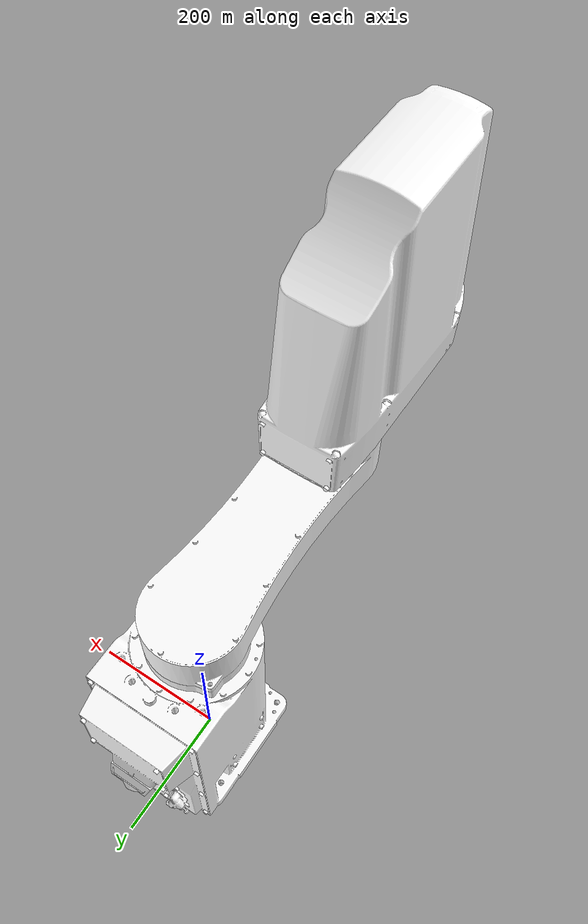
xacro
<?xml version="1.0"?>
<robot xmlns:xacro="http://www.ros.org/wiki/xacro" name="rh6frh">
    <!-- Description This file is a configuration file of a arguments within the RH-6FRH5520 robot driver. -->
    <!-- Here you can set the robot ip and connection port for the real robot -->
    <!-- WARNING!!!! Do not use the driver with any other robot arm. -->
    <!-- Mitsubishi Electric assume any liability if the driver is used with a different robot-->

    <xacro:arg name="is_sim" default="true"/>
    <xacro:arg name="robot_port" default="10000"/>
    <xacro:arg name="robot_ip" default="192.168.91.20"/>

    <xacro:include filename="$(find robot_description)/urdf/scara.urdf.xacro"/>
    <xacro:include filename="$(find robot_description)/urdf/scara_gazebo.xacro"/>
    <xacro:include filename="$(find robot_description)/urdf/scara_ros2_control.xacro"/>

    <!-- Used for fixing robot -->
    <link name="world"/>

    <xacro:rh6frh parent="world">
        <origin xyz="0 0 0" rpy="0 0 0" />
    </xacro:rh6frh>

    <xacro:rh6frh_r2c_hardware is_sim="$(arg is_sim)" robot_ip="$(arg robot_ip)" robot_port="$(arg robot_port)"/>
</robot>

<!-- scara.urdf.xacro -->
<robot xmlns:xacro="http://www.ros.org/wiki/xacro">
    <!-- Description This file is a definition of a model of RH-6FRH5520 robot.-->
    <!-- WARNING!!!! Do not use the driver with any other robot arm. -->
    <!-- Mitsubishi Electric assume any liability if the driver is used with a different robot-->

  <xacro:macro name="rh6frh" params="parent *origin">

    <!-- Robot Colour -->
    <material name="white">
        <color rgba="1 1 1 1.0"/>
    </material>

    <!-- PI Number -->
    <xacro:property name="PI" value="3.14159"/>

    <!-- Max effort for joints -->
    <xacro:property name="effort" value="30.0"/>

    <!-- Max joint 1 velocity [deg/s] -->
    <xacro:property name="velocity_J1" value="400"/>

    <!-- Max joint 2 velocity [deg/s] -->
    <xacro:property name="velocity_J2" value="670"/>

    <!-- Max joint 3 velocity [mm/s] -->
    <xacro:property name="velocity_J3" value="2400"/>

    <!-- Max joint 4 velocity [deg/s] -->
    <xacro:property name="velocity_J4" value="2500"/>

    <!-- Box inertia macro -->
    <xacro:macro name='inertia_box' params='m x y z'>
        <inertial>
            <origin xyz="${x/2} ${y/2} ${z/2}" rpy="0.0 0.0 0.0"/>
            <mass value="${m}"/>
            <inertia ixx="${(1/12)*m*(y*y+z*z)}" ixy="0.0" ixz="0.0" iyy="${(1/12)*m*(x*x+z*z)}" iyz="0.0" izz="${(1/12)*m*(x*x+y*y)}"/>
        </inertial>
    </xacro:macro>

    <!-- Cylinder inertia macro -->
    <xacro:macro name='inertia_cylinder' params='m l r'>
        <inertial>
            <origin xyz="${l/2} 0.0 0.0" rpy="0.0 0.0 0.0"/>
            <mass value="${m}"/>
            <inertia ixx="${(2/5)*m*r*r}" ixy="0.0" ixz="0.0" iyy="${(2/5)*m*r*r}" iyz="0.0" izz="${(2/5)*m*r*r}"/>
        </inertial>
    </xacro:macro>

    <!-- Joint transmission macro-->
    <xacro:macro name="transmission" params="number i">
        <transmission name="J${number}_transmission">
            <plugin>transmission_interface/SimpleTransmission</plugin>
            <actuator name="motor_${number}" role="actuator_1"/>
            <joint name="joint_${number}" role="joint_1"/>
                <mechanical_reduction>${i}</mechanical_reduction>
        </transmission>
    </xacro:macro>

    <!-- Robot model -->

    <!-- First link -->
    <link name="base_link">
        <visual>
            <origin xyz="0.0 0.0 0.0" rpy="${PI/2} 0.0 0.0"/>
            <geometry>
                <mesh filename="package://robot_description/meshes/J1SCARA.stl" scale="1 1 1"/>
            </geometry>
            <material name="white"/>
        </visual>
        <collision>
            <origin xyz="0.0 0.0 0.0" rpy="${PI/2} 0.0 0.0"/>
            <geometry>
                <mesh filename="package://robot_description/meshes/J1SCARA.stl" scale="1 1 1"/>
            </geometry>
        </collision>
        <xacro:inertia_box m="15" x="53.36" y="44.40" z="88.13"></xacro:inertia_box>
    </link>

    <!-- Virtual fixed joint -->
    <joint name="virtual_joint" type="fixed">
        <parent link="${parent}"/>
        <child link="base_link"/>
        <origin xyz="0.0 0.0 0.0" rpy="0.0 0.0 0.0"/>
    </joint>

    <!-- Second link -->
    <link name="J2">
        <visual>
            <origin xyz="0.0 0.0 -342" rpy="${PI/2} 0.0 0.0"/>
            <geometry>
                <mesh filename="package://robot_description/meshes/J2SCARA.stl" scale="1 1 1"/>
            </geometry>
            <material name="white"/>
        </visual>
        <collision>
            <origin xyz="0.0 0.0 -342" rpy="${PI/2} 0.0 0.0"/>
            <geometry>
                <mesh filename="package://robot_description/meshes/J2SCARA.stl" scale="1 1 1"/>
            </geometry>
        </collision>
        <xacro:inertia_box m="6" x="116.96" y="19.00" z="35.56"/>
    </link>

    <!-- First joint -->
    <joint name="joint_1" type="revolute">
        <origin xyz="0.0 0.0 342" rpy="0.0 0.0 0.0"/>
        <parent link="base_link"/>
        <child link="J2"/>
        <axis xyz="0.0 0.0 1"/>
        <limit lower="-${0.6139*PI}" upper="${0.944444*PI}" effort="${effort}" velocity="${velocity_J1}"/>
    </joint>

    <!-- Third link -->
    <link name="J3">
        <visual>
            <origin xyz="0 324 -410" rpy="${PI/2} 0 0"/>
            <geometry>
                <mesh filename="package://robot_description/meshes/J3SCARA.stl" scale="1 1 1"/>
            </geometry>
            <material name="white"/>
        </visual>
        <collision>
            <origin xyz="0 324 -410" rpy="${PI/2} 0 0"/>
            <geometry>
                <mesh filename="package://robot_description/meshes/J3SCARA.stl" scale="1 1 1"/>
            </geometry>
        </collision>
        <xacro:inertia_box m="10" x="97.00" y="34.00" z="97.00"/>
    </link>

    <!-- Second joint-->
    <joint name="joint_2" type="revolute">
        <origin xyz="0.0 -324 68" rpy="0.0 0.0 0.0"/>
        <parent link="J2"/>
        <child link="J3"/>
        <axis xyz="0.0 0.0 1"/>
        <limit lower="-${0.8*PI}" upper="${0.8*PI}" effort="${effort}" velocity="${velocity_J2}"/>
    </joint>

    <!-- Fourth Link -->
    <link name="J4">
        <visual>
            <origin xyz="0.0 550 -732" rpy="${PI/2} 0.0 0.0"/>
            <geometry>
                <mesh filename="package://robot_description/meshes/J4SCARA.stl" scale="1 1 1"/>
            </geometry>
            <material name="white"/>
        </visual>
        <collision>
            <origin xyz="0.0 550 -732" rpy="${PI/2} 0.0 0.0"/>
            <geometry>
                <mesh filename="package://robot_description/meshes/J4SCARA.stl" scale="1 1 1"/>
            </geometry>
        </collision>
        <xacro:inertia_cylinder m="5" l="106.17" r="3.175"/>
    </link>

    <!-- Third joint -->
    <joint name="joint_3" type="prismatic">
        <origin xyz="0.0 -230 0" rpy="0.0 0.0 0.0"/>
        <parent link="J3"/>
        <child link="J4"/>
        <axis xyz="0.0 0.0 1"/>

        <limit lower="134" upper="332" effort="${effort}" velocity="${velocity_J3}"/>
    </joint>

    <!-- Rotation of fourth link that mimics the linear movement of the previous link-->
    <link name="J4_rotate">
        <visual>
            <origin xyz="0.0 550 -332" rpy="${PI/2} 0 0.0"/>
            <geometry>
                <mesh filename="package://robot_description/meshes/J4SCARA.stl" scale="1 1 1"/>
            </geometry>
            <material name="white"/>
        </visual>
        <collision>
            <origin xyz="0.0 550 -332" rpy="${PI/2} 0 0.0"/>
            <geometry>
                <mesh filename="package://robot_description/meshes/J4SCARA.stl" scale="1 1 1"/>
            </geometry>
        </collision>
        <xacro:inertia_cylinder m="5" l="106.17" r="3.175"/>
    </link>

    <!-- Fourth joint-->
    <joint name="joint_4" type="revolute">
        <origin xyz="0.0 0 -400" rpy="0.0 0.0 0.0"/>
        <parent link="J4"/>
        <child link="J4_rotate"/>
        <axis xyz="0.0 0.0 1"/>
        <limit lower="-${PI*2}" upper="${PI*2}" effort="${effort}" velocity="${velocity_J4}"/>
    </joint>

    <!-- TCP point fixed at the end of the fourth link-->
    <link name="tool0">
        <inertial>
            <mass value="0.01"/>
            <inertia ixx="1.0" ixy="0.0" ixz="0.0" iyy="1.0" iyz="0.0" izz="1.0"/>
          </inertial>
      </link>

    <!-- TCP fixation-->
    <joint name="joint_4-tool0" type="fixed">
        <origin rpy="0 0 0" xyz="0 0 0"/>
        <parent link="J4_rotate"/>
        <child link="tool0"/>
    </joint>

    <!-- Joint transmissions-->
    <xacro:transmission number="1" i="80.0"/>
    <xacro:transmission number="2" i="80.0"/>
    <xacro:transmission number="3" i="14.4"/>
    <xacro:transmission number="4" i="14.4"/>

  </xacro:macro>
</robot>
